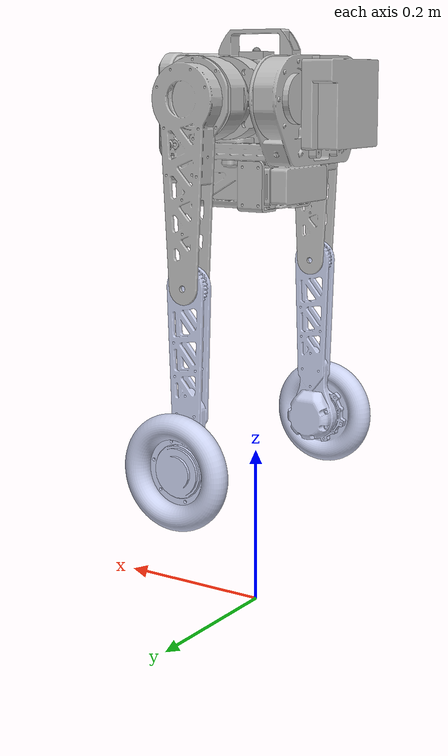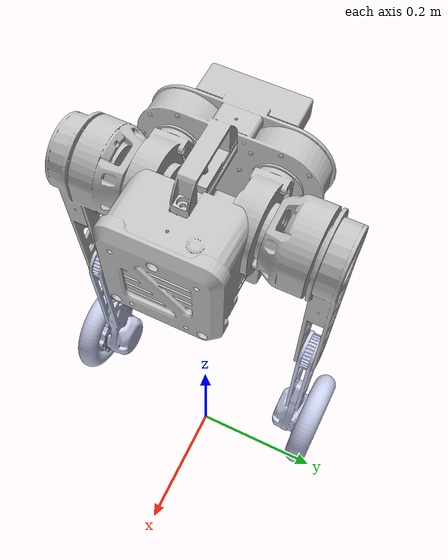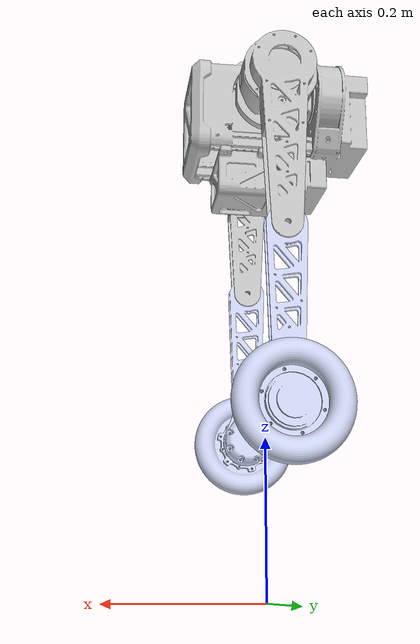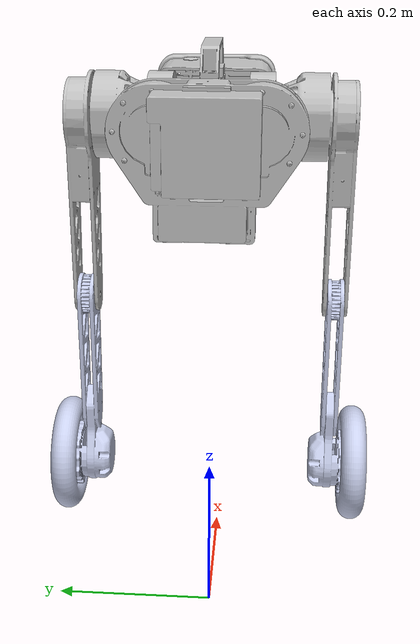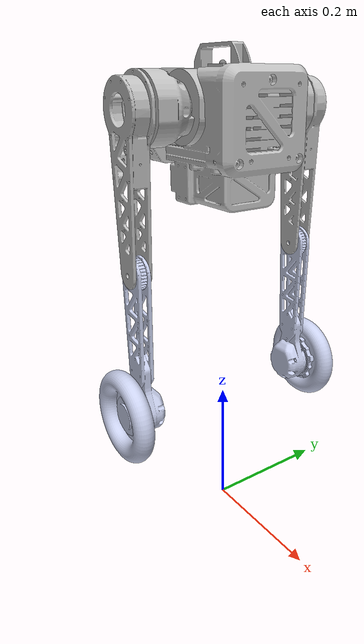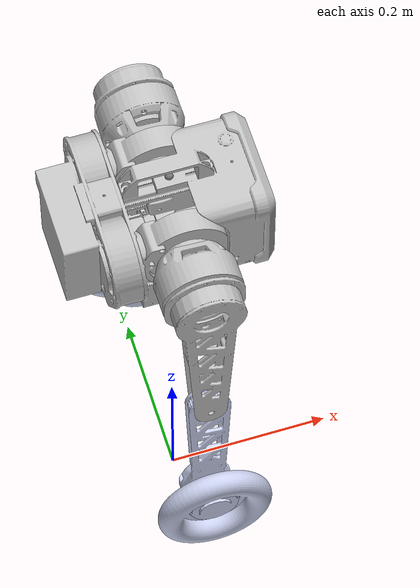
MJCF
<mujoco model="bi_urdf">
  <compiler angle="radian" meshdir="meshes"/>
  <size njmax="500" nconmax="100" />

  <option cone="elliptic" impratio="200" />
  <option  timestep="0.002" />
  <option timestep="0.002" gravity="0 0 -9.81" integrator="implicitfast"/>

  <default>
    <default class="biped_wheel">
      <geom friction="0.0" margin="0.0" condim="1"/>

      <joint axis="0 1 0" damping="0.1" armature="0.01" frictionloss="0.2"/>
      <motor ctrlrange="-23.7 23.7"/>
      <default class="hip">
        <joint axis="1 0 0" range="-1.0472 1.0472"/>
        <motor ctrlrange="-16 16"/>
      </default>
      <default class="thigh">
        <joint axis="0 1 0" range="-1.7 1.7"/>
        <motor ctrlrange="-23.7 23.7"/>
      </default>
      <default class="calf">
        <joint axis="0 1 0" range="-2.8 0"/>
        <motor ctrlrange="-45.43 45.43"/>
      </default>
      <default class="wheel">
        <joint axis="0 1 0" />
        <motor ctrlrange="-16 16"/>
      </default>
      <default class="visual">
        <geom type="mesh" contype="0" conaffinity="0" group="2"/>
      </default>
      <default class="collision">
        <geom group="3"/>
        <default class="foot">
          <geom size="0.022" priority="1" condim="6"
            friction="0.8 0.02 0.01"/>
        </default>
      </default>
    </default>
  </default>

  <asset>
    <mesh name="Base" file="./urdf/bi_urdf/meshes/Base.STL"/>
    <mesh name="L_hip" file="./urdf/bi_urdf/meshes/L_hip.STL"/>
    <mesh name="L_thigh" file="./urdf/bi_urdf/meshes/L_thigh.STL"/>
    <mesh name="L_calf" file="./urdf/bi_urdf/meshes/L_calf.STL"/>
    <mesh name="L_wheel" file="./urdf/bi_urdf/meshes/L_wheel.STL"/>
    <mesh name="R_hip" file="./urdf/bi_urdf/meshes/R_hip.STL"/>
    <mesh name="R_thigh" file="./urdf/bi_urdf/meshes/R_thigh.STL"/>
    <mesh name="R_calf" file="./urdf/bi_urdf/meshes/R_calf.STL"/>
    <mesh name="R_wheel" file="./urdf/bi_urdf/meshes/R_wheel.STL"/>
  </asset>

  <worldbody>
    <body name="base" pos="0 0 0.7">
      <inertial pos="-0.02790197 0.00038374 -0.08713367" quat="0 0 0 1" mass="3.7440" diaginertia="0.02602695 0.02385452 0.01794711" />
      <site name="imu" pos="0 0 0" />
      <geom type="mesh" contype="0" conaffinity="0" group="1" density="0" rgba="0.752941 0.752941 0.752941 1" mesh="Base"/>
      <geom type="mesh" rgba="0.05 0.05 0.05 1" mesh="Base"/>
      <body name="L_hip" pos="0 0.0562499 -0.054775">
        <inertial pos="-0.00437791 -0.0008348 -1.56e-06" quat="0.500781 0.500567 0.499216 0.499433" mass="0.573" diaginertia="0.000660672 0.00042648 0.000356838"/>
        <geom type="mesh" contype="0" conaffinity="0" group="1" density="0" rgba="0.752941 0.752941 0.752941 1" mesh="L_hip"/>
        <geom type="mesh" contype="0" conaffinity="0" rgba="0.15 0.15 0.15 1" mesh="L_hip"/>
        <body name="L_thigh" pos="-0.000265036 0.0144425 0">
          <inertial pos="-3.19e-06 0.0541482 -0.0301496" quat="0.701453 -0.0610942 0.0615033 0.707424" mass="1.123" diaginertia="0.00510552 0.00499318 0.00103785"/>
          <joint name="L_thigh_joint" pos="0 0 0" axis="0 1 0" damping="0.01" armature="0.0" stiffness="0" />
          <geom type="mesh" contype="0" conaffinity="0" group="1" density="0" rgba="0.752941 0.752941 0.752941 1" mesh="L_thigh"/>
          <geom type="mesh" contype="0" conaffinity="0" rgba="0.6 0.6 0.6 1" mesh="L_thigh"/>
          <body name="L_calf" pos="0 0.0527576 -0.215">
            <inertial pos="2.3e-05 0.0297417 -0.152755" quat="0.70545 -0.0225398 0.0222614 0.708051" mass="0.555" diaginertia="0.00387656 0.00382006 0.000210819"/>
            <joint name="L_calf_joint" pos="0 0 0" axis="0 1 0" damping="0.1" armature="0.0" stiffness="0" frictionloss="0.3"/>
            <geom type="mesh" contype="0" conaffinity="0" group="1" density="0" rgba="0.792157 0.819608 0.933333 1" mesh="L_calf"/>
            <geom type="mesh" rgba="0.05 0.05 0.05 1" mesh="L_calf"/>
            <body name="L_wheel" pos="0 0.0372307 -0.215">
              <inertial pos="0 0.0151977 0" quat="0.706247 -0.0348799 -0.0348815 0.706245" mass="0.28" diaginertia="0.00088385 0.00045838 0.00045837"/>
              <joint name="L_wheel_joint" pos="0 0 0" axis="0 1 0" damping="0.01" armature="0.0" stiffness="0"/>
              <geom type="mesh" contype="0" conaffinity="0" group="1" density="0" rgba="0.792157 0.819608 0.933333 1" mesh="L_wheel"/>
              <geom type="mesh" rgba="0.01 0.01 0.01 1" mesh="L_wheel"/>
            </body>
          </body>
        </body>
      </body>
      <body name="R_hip" pos="-0.000265036 -0.0606924 -0.0547755">
        <inertial pos="-0.00411048 0.00527723 0" quat="0.499395 0.499254 0.500601 0.500747" mass="0.573" diaginertia="0.000660702 0.00042653 0.000356818"/>
        <geom type="mesh" contype="0" conaffinity="0" group="1" density="0" rgba="0.752941 0.752941 0.752941 1" mesh="R_hip"/>
        <geom type="mesh" contype="0" conaffinity="0" rgba="0.15 0.15 0.15 1" mesh="R_hip"/>
        <body name="R_thigh" pos="0 -0.01 0">
          <inertial pos="-4.55e-06 -0.0541488 -0.0301497" quat="0.707341 0.0614924 -0.0611022 0.701537" mass="1.123" diaginertia="0.00510563 0.00499323 0.00103787"/>
          <joint name="R_thigh_joint" pos="0 0 0" axis="0 1 0" damping="0.01" armature="0.0" stiffness="0"/>
          <geom type="mesh" contype="0" conaffinity="0" group="1" density="0" rgba="0.752941 0.752941 0.752941 1" mesh="R_thigh"/>
          <geom type="mesh" contype="0" conaffinity="0" rgba="0.6 0.6 0.6 1" mesh="R_thigh"/>
          <body name="R_calf" pos="0 -0.0527576 -0.215">
            <inertial pos="2.256e-05 -0.0297421 -0.152754" quat="0.708063 0.0222594 -0.0225428 0.705438" mass="0.555" diaginertia="0.00387663 0.00382014 0.000210818"/>
            <joint name="R_calf_joint" pos="0 0 0" axis="0 1 0" damping="0.1" armature="0.0" stiffness="0" frictionloss="0.3"/>
            <geom type="mesh" contype="0" conaffinity="0" group="1" density="0" rgba="0.792157 0.819608 0.933333 1" mesh="R_calf"/>
            <geom type="mesh" rgba="0.05 0.05 0.05 1" mesh="R_calf"/>
            <body name="R_wheel" pos="0 -0.0372307 -0.215">
              <inertial pos="0 -0.0151977 0" quat="0.270598 0.653283 0.65328 0.270598" mass="0.28" diaginertia="0.00088386 0.000458381 0.000458379"/>
              <joint name="R_wheel_joint" pos="0 0 0" axis="0 1 0" damping="0.01" armature="0.0" stiffness="0"/>
              <geom type="mesh" contype="0" conaffinity="0" group="1" density="0" rgba="0.792157 0.819608 0.933333 1" mesh="R_wheel"/>
              <geom type="mesh" rgba="0.01 0.01 0.01 1" mesh="R_wheel"/>
            </body>
          </body>
        </body>
      </body>
    </body>
  </worldbody>

  <actuator>
    <position name="L_thigh" joint="L_thigh_joint" kp="120.2" kv="4" ctrlrange="-1.6 1.6" forcerange="-20 20"/>
    <position name="L_calf" joint="L_calf_joint" kp="120.2" kv="4" ctrlrange="-2.7 0" forcerange="-20 20"/>
    <position name="R_thigh" joint="R_thigh_joint" kp="120.2" kv="4" ctrlrange="-1.6 1.6" forcerange="-20 20"/>
    <position name="R_calf" joint="R_calf_joint" kp="120.2" kv="4" ctrlrange="-2.7 0" forcerange="-20 20"/>
    <velocity name="L_wheel" joint="L_wheel_joint" kv="0.5" forcerange="-2.46 2.46" ctrlrange="-60 60"/>
    <velocity name="R_wheel" joint="R_wheel_joint" kv="0.5" forcerange="-2.46 2.46" ctrlrange="-60 60"/>
  </actuator>

  <sensor>
    <jointpos name="L_thigh_joint_p" joint="L_thigh_joint" />
    <jointpos name="L_calf_joint_p" joint="L_calf_joint" />

    <jointpos name="R_thigh_joint_p" joint="R_thigh_joint" />
    <jointpos name="R_calf_joint_p" joint="R_calf_joint" />

    <jointvel name="L_thigh_joint_v" joint="L_thigh_joint" />
    <jointvel name="L_calf_joint_v" joint="L_calf_joint" />

    <jointvel name="R_thigh_joint_v" joint="R_thigh_joint" />
    <jointvel name="R_calf_joint_v" joint="R_calf_joint" />

    <jointvel name="L_wheel_joint_v" joint="L_wheel_joint" />
    <jointvel name="R_wheel_joint_v" joint="R_wheel_joint" />

    <jointactuatorfrc name="L_thigh_joint_t" joint="L_thigh_joint" noise="0.1" />
    <jointactuatorfrc name="L_calf_joint_t" joint="L_calf_joint" noise="0.1" />

    <jointactuatorfrc name="R_thigh_joint_t" joint="R_thigh_joint" noise="0.1" />
    <jointactuatorfrc name="R_calf_joint_t" joint="R_calf_joint" noise="0.1" />

    <jointactuatorfrc name="L_wheel_torque" joint="L_wheel_joint" noise="0.1" />
    <jointactuatorfrc name="R_wheel_torque" joint="R_wheel_joint" noise="0.1" />

    <framequat name="orientation" objtype="site" objname="imu" />
    <subtreelinvel name="base_lin_vel" body="base" />
    <gyro name="base_ang_vel" site="imu" />

    <framepos name="base_pos" objtype="body" objname="base" />
  </sensor>

</mujoco>
